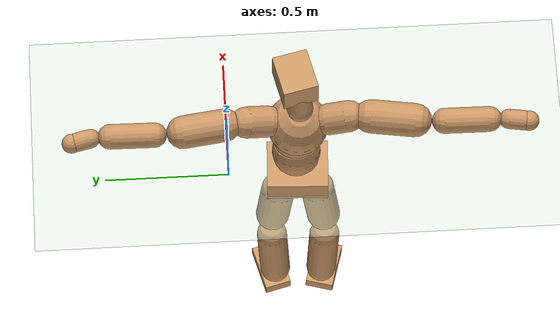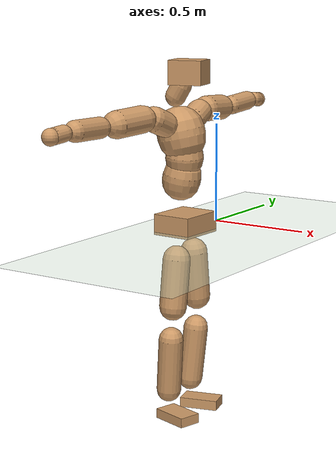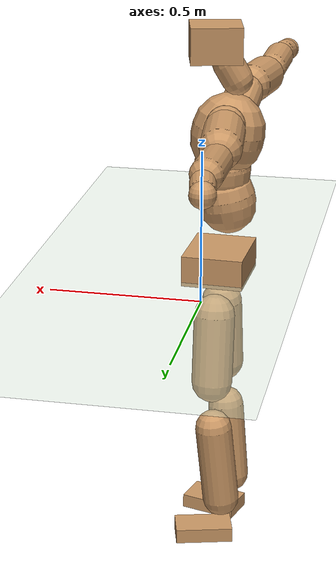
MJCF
<mujoco model="humanoid">
  <compiler coordinate="local" angle="radian"/>
  <default>
    <joint damping="0.0" armature="0.01" stiffness="0.0" limited="true"/>
    <geom conaffinity="1" condim="3" contype="7" margin="0.001" rgba="0.8 0.6 .4 1"/>
  </default>
  <asset>
    <texture type="skybox" builtin="gradient" rgb1=".4 .5 .6" rgb2="0 0 0" width="100" height="100"/>
    <texture builtin="flat" height="1278" mark="cross" markrgb="1 1 1" name="texgeom" random="0.01" rgb1="0.8 0.6 0.4" rgb2="0.8 0.6 0.4" type="cube" width="127"/>
    <texture builtin="checker" height="100" name="texplane" rgb1="0 0 0" rgb2="0.8 0.8 0.8" type="2d" width="100"/>
    <material name="MatPlane" reflectance="0.5" shininess="1" specular="1" texrepeat="60 60" texture="texplane"/>
    <material name="geom" texture="texgeom" texuniform="true"/>
  </asset>
  <worldbody>
    <light cutoff="100" diffuse="1 1 1" dir="-0 0 -1.3" directional="true" exponent="1" pos="0 0 1.3" specular=".1 .1 .1"/>
    <geom conaffinity="1" condim="3" name="floor" pos="0 0 0" rgba="0.8 0.9 0.8 1" size="100 100 .2" type="plane" material="MatPlane"/>
    <body name="Pelvis" pos="0.0017 -0.2773 0.0442">
      <freejoint name="Pelvis"/>
      <geom type="box" contype="1" conaffinity="1" density="500" pos="-0.0119 0.0005 -0.0081" size="0.1022 0.1227 0.0517" quat="0.9998 0.0000 0.0000 -0.0216" name="Pelvis"/>
      <body name="L_Hip" pos="-0.012 0.0697 -0.0901">
        <joint name="L_Hip_x" type="hinge" pos="0 0 0" axis="1 0 0" stiffness="800" damping="80" armature="0.02" range="-180.0000 180.0000"/>
        <joint name="L_Hip_y" type="hinge" pos="0 0 0" axis="0 1 0" stiffness="800" damping="80" armature="0.02" range="-180.0000 180.0000"/>
        <joint name="L_Hip_z" type="hinge" pos="0 0 0" axis="0 0 1" stiffness="800" damping="80" armature="0.02" range="-180.0000 180.0000"/>
        <geom type="capsule" contype="1" conaffinity="1" density="500" fromto="0.0007 0.0084 -0.0792 0.0027 0.0337 -0.3167" size="0.0687" name="L_Hip"/>
        <body name="L_Knee" pos="0.0034 0.0421 -0.3959">
          <joint name="L_Knee_x" type="hinge" pos="0 0 0" axis="1 0 0" stiffness="800" damping="80" armature="0.02" range="-180.0000 180.0000"/>
          <joint name="L_Knee_y" type="hinge" pos="0 0 0" axis="0 1 0" stiffness="800" damping="80" armature="0.02" range="-180.0000 180.0000"/>
          <joint name="L_Knee_z" type="hinge" pos="0 0 0" axis="0 0 1" stiffness="800" damping="80" armature="0.02" range="-180.0000 180.0000"/>
          <geom type="capsule" contype="1" conaffinity="1" density="500" fromto="-0.0088 -0.0037 -0.0915 -0.0352 -0.0147 -0.3660" size="0.0624" name="L_Knee"/>
          <body name="L_Ankle" pos="-0.044 -0.0184 -0.4575">
            <joint name="L_Ankle_x" type="hinge" pos="0 0 0" axis="1 0 0" stiffness="800" damping="80" armature="0.02" range="-180.0000 180.0000"/>
            <joint name="L_Ankle_y" type="hinge" pos="0 0 0" axis="0 1 0" stiffness="800" damping="80" armature="0.02" range="-180.0000 180.0000"/>
            <joint name="L_Ankle_z" type="hinge" pos="0 0 0" axis="0 0 1" stiffness="800" damping="80" armature="0.02" range="-180.0000 180.0000"/>
            <geom type="box" contype="1" conaffinity="1" density="500" pos="0.0673 0.0179 -0.0320" size="0.0976 0.0539 0.0251" quat="0.9916 0.0000 0.0000 0.1294" name="L_Ankle"/>
            <body name="L_Toe" pos="0.1347 0.0357 -0.064">
              <joint name="L_Toe_x" type="hinge" pos="0 0 0" axis="1 0 0" stiffness="500" damping="50" armature="0.02" range="-180.0000 180.0000"/>
              <joint name="L_Toe_y" type="hinge" pos="0 0 0" axis="0 1 0" stiffness="500" damping="50" armature="0.02" range="-180.0000 180.0000"/>
              <joint name="L_Toe_z" type="hinge" pos="0 0 0" axis="0 0 1" stiffness="500" damping="50" armature="0.02" range="-180.0000 180.0000"/>
              <geom type="box" contype="1" conaffinity="1" density="500" pos="0.0000 0.0000 0.0319" size="0.0011 0.0027 0.0013" quat="0.9909 0.0000 0.0000 0.1343" name="L_Toe"/>
            </body>
          </body>
        </body>
      </body>
      <body name="R_Hip" pos="-0.0087 -0.0711 -0.0981">
        <joint name="R_Hip_x" type="hinge" pos="0 0 0" axis="1 0 0" stiffness="800" damping="80" armature="0.02" range="-180.0000 180.0000"/>
        <joint name="R_Hip_y" type="hinge" pos="0 0 0" axis="0 1 0" stiffness="800" damping="80" armature="0.02" range="-180.0000 180.0000"/>
        <joint name="R_Hip_z" type="hinge" pos="0 0 0" axis="0 0 1" stiffness="800" damping="80" armature="0.02" range="-180.0000 180.0000"/>
        <geom type="capsule" contype="1" conaffinity="1" density="500" fromto="-0.0014 -0.0088 -0.0800 -0.0058 -0.0353 -0.3201" size="0.0686" name="R_Hip"/>
        <body name="R_Knee" pos="-0.0072 -0.0442 -0.4001">
          <joint name="R_Knee_x" type="hinge" pos="0 0 0" axis="1 0 0" stiffness="800" damping="80" armature="0.02" range="-180.0000 180.0000"/>
          <joint name="R_Knee_y" type="hinge" pos="0 0 0" axis="0 1 0" stiffness="800" damping="80" armature="0.02" range="-180.0000 180.0000"/>
          <joint name="R_Knee_z" type="hinge" pos="0 0 0" axis="0 0 1" stiffness="800" damping="80" armature="0.02" range="-180.0000 180.0000"/>
          <geom type="capsule" contype="1" conaffinity="1" density="500" fromto="-0.0078 0.0045 -0.0906 -0.0314 0.0179 -0.3625" size="0.0619" name="R_Knee"/>
          <body name="R_Ankle" pos="-0.0392 0.0224 -0.4531">
            <joint name="R_Ankle_x" type="hinge" pos="0 0 0" axis="1 0 0" stiffness="800" damping="80" armature="0.02" range="-180.0000 180.0000"/>
            <joint name="R_Ankle_y" type="hinge" pos="0 0 0" axis="0 1 0" stiffness="800" damping="80" armature="0.02" range="-180.0000 180.0000"/>
            <joint name="R_Ankle_z" type="hinge" pos="0 0 0" axis="0 0 1" stiffness="800" damping="80" armature="0.02" range="-180.0000 180.0000"/>
            <geom type="box" contype="1" conaffinity="1" density="500" pos="0.0706 -0.0201 -0.0341" size="0.0967 0.0571 0.0243" quat="0.9904 0.0000 0.0000 -0.1379" name="R_Ankle"/>
            <body name="R_Toe" pos="0.1412 -0.0401 -0.0682">
              <joint name="R_Toe_x" type="hinge" pos="0 0 0" axis="1 0 0" stiffness="500" damping="50" armature="0.02" range="-180.0000 180.0000"/>
              <joint name="R_Toe_y" type="hinge" pos="0 0 0" axis="0 1 0" stiffness="500" damping="50" armature="0.02" range="-180.0000 180.0000"/>
              <joint name="R_Toe_z" type="hinge" pos="0 0 0" axis="0 0 1" stiffness="500" damping="50" armature="0.02" range="-180.0000 180.0000"/>
              <geom type="box" contype="1" conaffinity="1" density="500" pos="0.0000 0.0000 0.0345" size="0.0013 0.0028 0.0012" quat="0.9916 0.0000 0.0000 -0.1297" name="R_Toe"/>
            </body>
          </body>
        </body>
      </body>
      <body name="Torso" pos="-0.0505 0.0044 0.1395">
        <joint name="Torso_x" type="hinge" pos="0 0 0" axis="1 0 0" stiffness="1000" damping="100" armature="0.02" range="-180.0000 180.0000"/>
        <joint name="Torso_y" type="hinge" pos="0 0 0" axis="0 1 0" stiffness="1000" damping="100" armature="0.02" range="-180.0000 180.0000"/>
        <joint name="Torso_z" type="hinge" pos="0 0 0" axis="0 0 1" stiffness="1000" damping="100" armature="0.02" range="-180.0000 180.0000"/>
        <geom type="capsule" contype="1" conaffinity="1" density="500" fromto="0.0169 0.0027 0.0891 0.0113 0.0018 0.0594" size="0.096" name="Torso"/>
        <body name="Spine" pos="0.0282 0.0045 0.1485">
          <joint name="Spine_x" type="hinge" pos="0 0 0" axis="1 0 0" stiffness="1000" damping="100" armature="0.02" range="-180.0000 180.0000"/>
          <joint name="Spine_y" type="hinge" pos="0 0 0" axis="0 1 0" stiffness="1000" damping="100" armature="0.02" range="-180.0000 180.0000"/>
          <joint name="Spine_z" type="hinge" pos="0 0 0" axis="0 0 1" stiffness="1000" damping="100" armature="0.02" range="-180.0000 180.0000"/>
          <geom type="capsule" contype="1" conaffinity="1" density="500" fromto="0.0030 -0.0024 0.0371 0.0020 -0.0016 0.0247" size="0.0946" name="Spine"/>
          <body name="Chest" pos="0.0051 -0.004 0.0618">
            <joint name="Chest_x" type="hinge" pos="0 0 0" axis="1 0 0" stiffness="1000" damping="100" armature="0.02" range="-180.0000 180.0000"/>
            <joint name="Chest_y" type="hinge" pos="0 0 0" axis="0 1 0" stiffness="1000" damping="100" armature="0.02" range="-180.0000 180.0000"/>
            <joint name="Chest_z" type="hinge" pos="0 0 0" axis="0 0 1" stiffness="1000" damping="100" armature="0.02" range="-180.0000 180.0000"/>
            <geom type="capsule" contype="1" conaffinity="1" density="500" fromto="-0.0216 -0.0054 0.1030 -0.0144 -0.0036 0.0687" size="0.1203" name="Chest"/>
            <body name="Neck" pos="-0.0556 -0.014 0.2504">
              <joint name="Neck_x" type="hinge" pos="0 0 0" axis="1 0 0" stiffness="500" damping="50" armature="0.02" range="-180.0000 180.0000"/>
              <joint name="Neck_y" type="hinge" pos="0 0 0" axis="0 1 0" stiffness="500" damping="50" armature="0.02" range="-180.0000 180.0000"/>
              <joint name="Neck_z" type="hinge" pos="0 0 0" axis="0 0 1" stiffness="500" damping="50" armature="0.02" range="-180.0000 180.0000"/>
              <geom type="capsule" contype="1" conaffinity="1" density="500" fromto="0.0104 0.0021 0.0183 0.0415 0.0084 0.0731" size="0.0513" name="Neck"/>
              <body name="Head" pos="0.0519 0.0105 0.0914">
                <joint name="Head_x" type="hinge" pos="0 0 0" axis="1 0 0" stiffness="500" damping="50" armature="0.02" range="-180.0000 180.0000"/>
                <joint name="Head_y" type="hinge" pos="0 0 0" axis="0 1 0" stiffness="500" damping="50" armature="0.02" range="-180.0000 180.0000"/>
                <joint name="Head_z" type="hinge" pos="0 0 0" axis="0 0 1" stiffness="500" damping="50" armature="0.02" range="-180.0000 180.0000"/>
                <geom type="box" contype="1" conaffinity="1" density="500" pos="0.0270 0.0062 0.0467" size="0.0837 0.0695 0.0594" quat="0.9935 0.0000 0.0000 0.1134" name="Head"/>
              </body>
            </body>
            <body name="L_Thorax" pos="-0.0236 0.0849 0.133">
              <joint name="L_Thorax_x" type="hinge" pos="0 0 0" axis="1 0 0" stiffness="500" damping="50" armature="0.02" range="-180.0000 180.0000"/>
              <joint name="L_Thorax_y" type="hinge" pos="0 0 0" axis="0 1 0" stiffness="500" damping="50" armature="0.02" range="-180.0000 180.0000"/>
              <joint name="L_Thorax_z" type="hinge" pos="0 0 0" axis="0 0 1" stiffness="500" damping="50" armature="0.02" range="-180.0000 180.0000"/>
              <geom type="capsule" contype="1" conaffinity="1" density="500" fromto="-0.0050 0.0285 0.0101 -0.0202 0.1141 0.0404" size="0.0626" name="L_Thorax"/>
              <body name="L_Shoulder" pos="-0.0252 0.1426 0.0505">
                <joint name="L_Shoulder_x" type="hinge" pos="0 0 0" axis="1 0 0" stiffness="500" damping="50" armature="0.02" range="-720.0000 720.0000"/>
                <joint name="L_Shoulder_y" type="hinge" pos="0 0 0" axis="0 1 0" stiffness="500" damping="50" armature="0.02" range="-720.0000 720.0000"/>
                <joint name="L_Shoulder_z" type="hinge" pos="0 0 0" axis="0 0 1" stiffness="500" damping="50" armature="0.02" range="-720.0000 720.0000"/>
                <geom type="capsule" contype="1" conaffinity="1" density="500" fromto="-0.0056 0.0551 -0.0033 -0.0223 0.2202 -0.0132" size="0.0651" name="L_Shoulder"/>
                <body name="L_Elbow" pos="-0.0279 0.2753 -0.0165">
                  <joint name="L_Elbow_x" type="hinge" pos="0 0 0" axis="1 0 0" stiffness="500" damping="50" armature="0.02" range="-720.0000 720.0000"/>
                  <joint name="L_Elbow_y" type="hinge" pos="0 0 0" axis="0 1 0" stiffness="500" damping="50" armature="0.02" range="-720.0000 720.0000"/>
                  <joint name="L_Elbow_z" type="hinge" pos="0 0 0" axis="0 0 1" stiffness="500" damping="50" armature="0.02" range="-720.0000 720.0000"/>
                  <geom type="capsule" contype="1" conaffinity="1" density="500" fromto="-0.0008 0.0574 0.0031 -0.0032 0.2297 0.0124" size="0.0495" name="L_Elbow"/>
                  <body name="L_Wrist" pos="-0.004 0.2872 0.0156">
                    <joint name="L_Wrist_x" type="hinge" pos="0 0 0" axis="1 0 0" stiffness="300" damping="30" armature="0.02" range="-180.0000 180.0000"/>
                    <joint name="L_Wrist_y" type="hinge" pos="0 0 0" axis="0 1 0" stiffness="300" damping="30" armature="0.02" range="-180.0000 180.0000"/>
                    <joint name="L_Wrist_z" type="hinge" pos="0 0 0" axis="0 0 1" stiffness="300" damping="30" armature="0.02" range="-180.0000 180.0000"/>
                    <geom type="capsule" contype="1" conaffinity="1" density="500" fromto="-0.0033 0.0188 -0.0023 -0.0133 0.0753 -0.0092" size="0.0376" name="L_Wrist"/>
                    <body name="L_Hand" pos="-0.0166 0.0942 -0.0114">
                      <joint name="L_Hand_x" type="hinge" pos="0 0 0" axis="1 0 0" stiffness="300" damping="30" armature="0.02" range="-180.0000 180.0000"/>
                      <joint name="L_Hand_y" type="hinge" pos="0 0 0" axis="0 1 0" stiffness="300" damping="30" armature="0.02" range="-180.0000 180.0000"/>
                      <joint name="L_Hand_z" type="hinge" pos="0 0 0" axis="0 0 1" stiffness="300" damping="30" armature="0.02" range="-180.0000 180.0000"/>
                      <geom type="sphere" contype="1" conaffinity="1" density="500" size="0.0388" pos="0.0000 0.0000 0.0000" name="L_Hand"/>
                    </body>
                  </body>
                </body>
              </body>
            </body>
            <body name="R_Thorax" pos="-0.029 -0.0981 0.1317">
              <joint name="R_Thorax_x" type="hinge" pos="0 0 0" axis="1 0 0" stiffness="500" damping="50" armature="0.02" range="-180.0000 180.0000"/>
              <joint name="R_Thorax_y" type="hinge" pos="0 0 0" axis="0 1 0" stiffness="500" damping="50" armature="0.02" range="-180.0000 180.0000"/>
              <joint name="R_Thorax_z" type="hinge" pos="0 0 0" axis="0 0 1" stiffness="500" damping="50" armature="0.02" range="-180.0000 180.0000"/>
              <geom type="capsule" contype="1" conaffinity="1" density="500" fromto="-0.0025 -0.0267 0.0110 -0.0102 -0.1070 0.0438" size="0.0627" name="R_Thorax"/>
              <body name="R_Shoulder" pos="-0.0127 -0.1337 0.0548">
                <joint name="R_Shoulder_x" type="hinge" pos="0 0 0" axis="1 0 0" stiffness="500" damping="50" armature="0.02" range="-720.0000 720.0000"/>
                <joint name="R_Shoulder_y" type="hinge" pos="0 0 0" axis="0 1 0" stiffness="500" damping="50" armature="0.02" range="-720.0000 720.0000"/>
                <joint name="R_Shoulder_z" type="hinge" pos="0 0 0" axis="0 0 1" stiffness="500" damping="50" armature="0.02" range="-720.0000 720.0000"/>
                <geom type="capsule" contype="1" conaffinity="1" density="500" fromto="-0.0075 -0.0575 -0.0028 -0.0298 -0.2301 -0.0111" size="0.0666" name="R_Shoulder"/>
                <body name="R_Elbow" pos="-0.0373 -0.2877 -0.0139">
                  <joint name="R_Elbow_x" type="hinge" pos="0 0 0" axis="1 0 0" stiffness="500" damping="50" armature="0.02" range="-720.0000 720.0000"/>
                  <joint name="R_Elbow_y" type="hinge" pos="0 0 0" axis="0 1 0" stiffness="500" damping="50" armature="0.02" range="-720.0000 720.0000"/>
                  <joint name="R_Elbow_z" type="hinge" pos="0 0 0" axis="0 0 1" stiffness="500" damping="50" armature="0.02" range="-720.0000 720.0000"/>
                  <geom type="capsule" contype="1" conaffinity="1" density="500" fromto="-0.0010 -0.0580 0.0009 -0.0041 -0.2318 0.0037" size="0.0506" name="R_Elbow"/>
                  <body name="R_Wrist" pos="-0.0051 -0.2898 0.0046">
                    <joint name="R_Wrist_x" type="hinge" pos="0 0 0" axis="1 0 0" stiffness="300" damping="30" armature="0.02" range="-180.0000 180.0000"/>
                    <joint name="R_Wrist_y" type="hinge" pos="0 0 0" axis="0 1 0" stiffness="300" damping="30" armature="0.02" range="-180.0000 180.0000"/>
                    <joint name="R_Wrist_z" type="hinge" pos="0 0 0" axis="0 0 1" stiffness="300" damping="30" armature="0.02" range="-180.0000 180.0000"/>
                    <geom type="capsule" contype="1" conaffinity="1" density="500" fromto="-0.0021 -0.0197 -0.0019 -0.0085 -0.0788 -0.0077" size="0.0391" name="R_Wrist"/>
                    <body name="R_Hand" pos="-0.0106 -0.0985 -0.0096">
                      <joint name="R_Hand_x" type="hinge" pos="0 0 0" axis="1 0 0" stiffness="300" damping="30" armature="0.02" range="-180.0000 180.0000"/>
                      <joint name="R_Hand_y" type="hinge" pos="0 0 0" axis="0 1 0" stiffness="300" damping="30" armature="0.02" range="-180.0000 180.0000"/>
                      <joint name="R_Hand_z" type="hinge" pos="0 0 0" axis="0 0 1" stiffness="300" damping="30" armature="0.02" range="-180.0000 180.0000"/>
                      <geom type="sphere" contype="1" conaffinity="1" density="500" size="0.0401" pos="0.0000 0.0000 0.0000" name="R_Hand"/>
                    </body>
                  </body>
                </body>
              </body>
            </body>
          </body>
        </body>
      </body>
    </body>
  </worldbody>
  <actuator>
    <motor name="L_Hip_x" joint="L_Hip_x" gear="500"/>
    <motor name="L_Hip_y" joint="L_Hip_y" gear="500"/>
    <motor name="L_Hip_z" joint="L_Hip_z" gear="500"/>
    <motor name="L_Knee_x" joint="L_Knee_x" gear="500"/>
    <motor name="L_Knee_y" joint="L_Knee_y" gear="500"/>
    <motor name="L_Knee_z" joint="L_Knee_z" gear="500"/>
    <motor name="L_Ankle_x" joint="L_Ankle_x" gear="500"/>
    <motor name="L_Ankle_y" joint="L_Ankle_y" gear="500"/>
    <motor name="L_Ankle_z" joint="L_Ankle_z" gear="500"/>
    <motor name="L_Toe_x" joint="L_Toe_x" gear="500"/>
    <motor name="L_Toe_y" joint="L_Toe_y" gear="500"/>
    <motor name="L_Toe_z" joint="L_Toe_z" gear="500"/>
    <motor name="R_Hip_x" joint="R_Hip_x" gear="500"/>
    <motor name="R_Hip_y" joint="R_Hip_y" gear="500"/>
    <motor name="R_Hip_z" joint="R_Hip_z" gear="500"/>
    <motor name="R_Knee_x" joint="R_Knee_x" gear="500"/>
    <motor name="R_Knee_y" joint="R_Knee_y" gear="500"/>
    <motor name="R_Knee_z" joint="R_Knee_z" gear="500"/>
    <motor name="R_Ankle_x" joint="R_Ankle_x" gear="500"/>
    <motor name="R_Ankle_y" joint="R_Ankle_y" gear="500"/>
    <motor name="R_Ankle_z" joint="R_Ankle_z" gear="500"/>
    <motor name="R_Toe_x" joint="R_Toe_x" gear="500"/>
    <motor name="R_Toe_y" joint="R_Toe_y" gear="500"/>
    <motor name="R_Toe_z" joint="R_Toe_z" gear="500"/>
    <motor name="Torso_x" joint="Torso_x" gear="500"/>
    <motor name="Torso_y" joint="Torso_y" gear="500"/>
    <motor name="Torso_z" joint="Torso_z" gear="500"/>
    <motor name="Spine_x" joint="Spine_x" gear="500"/>
    <motor name="Spine_y" joint="Spine_y" gear="500"/>
    <motor name="Spine_z" joint="Spine_z" gear="500"/>
    <motor name="Chest_x" joint="Chest_x" gear="500"/>
    <motor name="Chest_y" joint="Chest_y" gear="500"/>
    <motor name="Chest_z" joint="Chest_z" gear="500"/>
    <motor name="Neck_x" joint="Neck_x" gear="500"/>
    <motor name="Neck_y" joint="Neck_y" gear="500"/>
    <motor name="Neck_z" joint="Neck_z" gear="500"/>
    <motor name="Head_x" joint="Head_x" gear="500"/>
    <motor name="Head_y" joint="Head_y" gear="500"/>
    <motor name="Head_z" joint="Head_z" gear="500"/>
    <motor name="L_Thorax_x" joint="L_Thorax_x" gear="500"/>
    <motor name="L_Thorax_y" joint="L_Thorax_y" gear="500"/>
    <motor name="L_Thorax_z" joint="L_Thorax_z" gear="500"/>
    <motor name="L_Shoulder_x" joint="L_Shoulder_x" gear="500"/>
    <motor name="L_Shoulder_y" joint="L_Shoulder_y" gear="500"/>
    <motor name="L_Shoulder_z" joint="L_Shoulder_z" gear="500"/>
    <motor name="L_Elbow_x" joint="L_Elbow_x" gear="500"/>
    <motor name="L_Elbow_y" joint="L_Elbow_y" gear="500"/>
    <motor name="L_Elbow_z" joint="L_Elbow_z" gear="500"/>
    <motor name="L_Wrist_x" joint="L_Wrist_x" gear="500"/>
    <motor name="L_Wrist_y" joint="L_Wrist_y" gear="500"/>
    <motor name="L_Wrist_z" joint="L_Wrist_z" gear="500"/>
    <motor name="L_Hand_x" joint="L_Hand_x" gear="500"/>
    <motor name="L_Hand_y" joint="L_Hand_y" gear="500"/>
    <motor name="L_Hand_z" joint="L_Hand_z" gear="500"/>
    <motor name="R_Thorax_x" joint="R_Thorax_x" gear="500"/>
    <motor name="R_Thorax_y" joint="R_Thorax_y" gear="500"/>
    <motor name="R_Thorax_z" joint="R_Thorax_z" gear="500"/>
    <motor name="R_Shoulder_x" joint="R_Shoulder_x" gear="500"/>
    <motor name="R_Shoulder_y" joint="R_Shoulder_y" gear="500"/>
    <motor name="R_Shoulder_z" joint="R_Shoulder_z" gear="500"/>
    <motor name="R_Elbow_x" joint="R_Elbow_x" gear="500"/>
    <motor name="R_Elbow_y" joint="R_Elbow_y" gear="500"/>
    <motor name="R_Elbow_z" joint="R_Elbow_z" gear="500"/>
    <motor name="R_Wrist_x" joint="R_Wrist_x" gear="500"/>
    <motor name="R_Wrist_y" joint="R_Wrist_y" gear="500"/>
    <motor name="R_Wrist_z" joint="R_Wrist_z" gear="500"/>
    <motor name="R_Hand_x" joint="R_Hand_x" gear="500"/>
    <motor name="R_Hand_y" joint="R_Hand_y" gear="500"/>
    <motor name="R_Hand_z" joint="R_Hand_z" gear="500"/>
  </actuator>
  <contact>
    <exclude body1="Torso" body2="Chest"/>
    <exclude body1="Head" body2="Chest"/>
    <exclude body1="R_Knee" body2="R_Toe"/>
    <exclude body1="R_Knee" body2="L_Ankle"/>
    <exclude body1="R_Knee" body2="L_Toe"/>
    <exclude body1="L_Knee" body2="L_Toe"/>
    <exclude body1="L_Knee" body2="R_Ankle"/>
    <exclude body1="L_Knee" body2="R_Toe"/>
    <exclude body1="L_Shoulder" body2="Chest"/>
    <exclude body1="R_Shoulder" body2="Chest"/>
  </contact>
  <sensor/>
  <size njmax="700" nconmax="700"/>
</mujoco>
